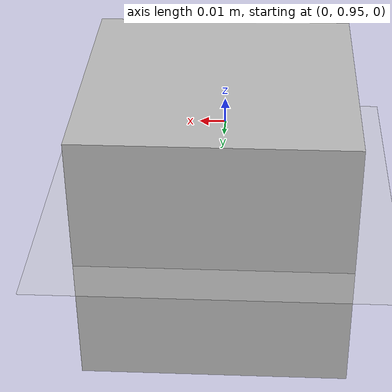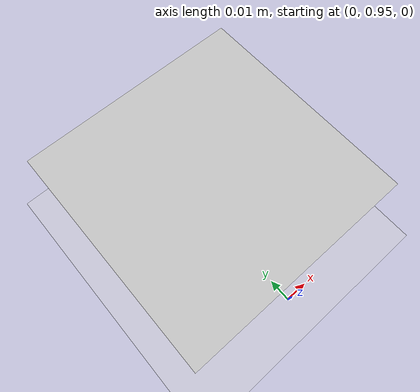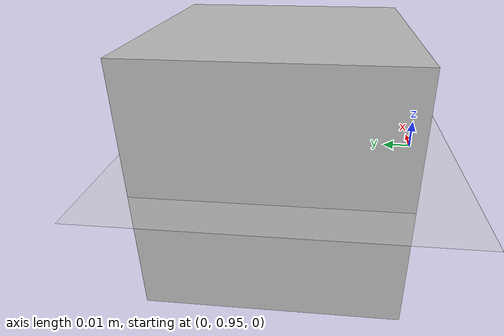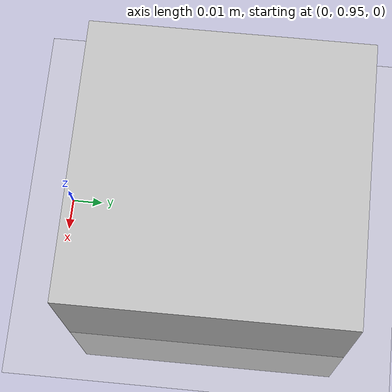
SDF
<sdf version="1.4">
  <world name="default">

    <scene>
      <ambient>0.4 0.4 0.4 1</ambient>
      <background>0.7 0.7 0.7 1</background>
      <shadows>true</shadows>
    </scene>

    <!-- A global light source -->
    <include>
      <uri>model://sun</uri>
    </include>

    <!-- A ground plane -->
    <include>
      <uri>model://ground_plane</uri>
    </include>

    <physics type="ode">
      <real_time_update_rate>1000.0</real_time_update_rate>
      <max_step_size>0.001</max_step_size>
      <real_time_factor>1</real_time_factor>
      <ode>
        <solver>
          <type>quick</type>
          <iters>150</iters>
          <precon_iters>0</precon_iters>
          <sor>1.400000</sor>
          <use_dynamic_moi_rescaling>1</use_dynamic_moi_rescaling>
        </solver>
        <constraints>
          <cfm>0.00001</cfm>
          <erp>0.2</erp>
          <contact_max_correcting_vel>2000.000000</contact_max_correcting_vel>
          <contact_surface_layer>0.01000</contact_surface_layer>
        </constraints>
      </ode>
    </physics>

 <!-- Load world -->

    <include>
      <uri>model://block_color_lidarTest</uri>
    </include>

    <gui fullscreen='0'>
      <camera name='user_camera'>
        <pose>0.8 0.0 12.0 0 1.5708 0</pose>
        <view_controller>orbit</view_controller>
      </camera>
    </gui>

   </world>

</sdf>

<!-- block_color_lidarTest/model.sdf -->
<sdf version='1.6'>
  <model name='block_color_lidarTest'>

    <link name='link_2'>
      <pose frame=''>0 0 0 0 0 0</pose>
      <inertial>
        <mass>1</mass>
        <inertia>
          <ixx>0.166667</ixx>
          <ixy>0</ixy>
          <ixz>0</ixz>
          <iyy>0.166667</iyy>
          <iyz>0</iyz>
          <izz>0.166667</izz>
        </inertia>
        <pose frame=''>0 1 0 0 -0 0</pose>
      </inertial>
      <gravity>1</gravity>
      <self_collide>0</self_collide>
      <kinematic>0</kinematic>
      <visual name='visual_2'>
        <pose frame=''>0 1 0 0 -0 0</pose>
        <geometry>
	  <mesh><uri>model://block_color_lidarTest/apriltag2.dae</uri></mesh>
        </geometry>

        <material>
          <lighting>1</lighting>
          <shader type='pixel'>
            <normal_map>__default__</normal_map>
          </shader>
          <emissive>0.5 0.5 0.5 1</emissive>
        </material>

        <transparency>0</transparency>
        <cast_shadows>1</cast_shadows>
      </visual>
      <collision name='collision_2'>
        <laser_retro>0</laser_retro>
        <max_contacts>10</max_contacts>
        <pose frame=''>0 1 0 0 -0 0</pose>
        <geometry>
	<mesh><uri>model://block_color_lidarTest/apriltag2.dae</uri></mesh>
        </geometry>
        <surface>
          <friction>
            <ode>
              <mu>1</mu>
              <mu2>1</mu2>
              <fdir1>0 0 0</fdir1>
              <slip1>0</slip1>
              <slip2>0</slip2>
            </ode>
            <torsional>
              <coefficient>1</coefficient>
              <patch_radius>0</patch_radius>
              <surface_radius>0</surface_radius>
              <use_patch_radius>1</use_patch_radius>
              <ode>
                <slip>0</slip>
              </ode>
            </torsional>
          </friction>
          <bounce>
            <restitution_coefficient>0</restitution_coefficient>
            <threshold>1e+06</threshold>
          </bounce>
          <contact>
            <collide_without_contact>0</collide_without_contact>
            <collide_without_contact_bitmask>1</collide_without_contact_bitmask>
            <collide_bitmask>1</collide_bitmask>
            <ode>
              <soft_cfm>0</soft_cfm>
              <soft_erp>0.2</soft_erp>
              <kp>1e+13</kp>
              <kd>1</kd>
              <max_vel>0.01</max_vel>
              <min_depth>0</min_depth>
            </ode>
            <bullet>
              <split_impulse>1</split_impulse>
              <split_impulse_penetration_threshold>-0.01</split_impulse_penetration_threshold>
              <soft_cfm>0</soft_cfm>
              <soft_erp>0.2</soft_erp>
              <kp>1e+13</kp>
              <kd>1</kd>
            </bullet>
          </contact>
        </surface>
      </collision>
    </link>
    <static>0</static>
    <allow_auto_disable>1</allow_auto_disable>
  </model>
</sdf>
